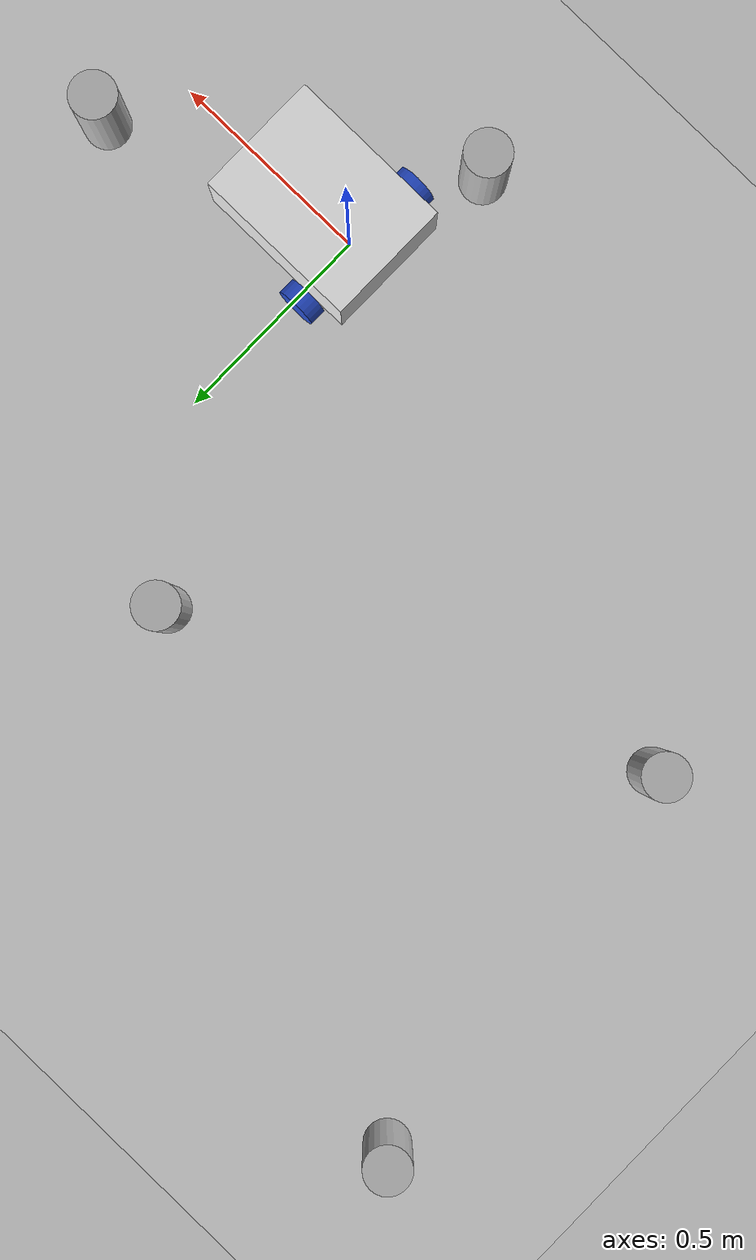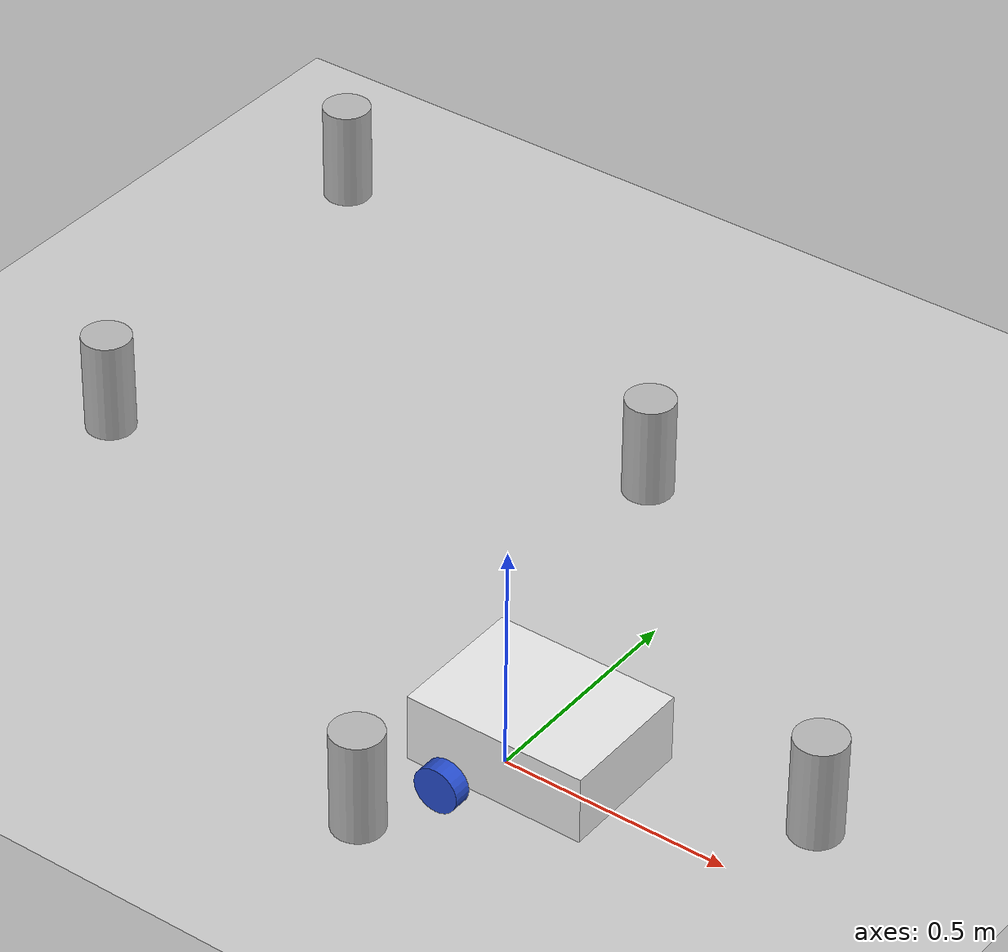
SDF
<sdf version="1.7">
 <world name="default">
  <light name="sun" type="directional">
   <pose>0 0 10 0 -0 0</pose>
   <diffuse>0.8 0.8 0.8 1</diffuse>
   <specular>0.2 0.2 0.2 1</specular>
   <attenuation>
    <range>1000</range>
    <constant>0.9</constant>
    <linear>0.01</linear>
    <quadratic>0.001</quadratic>
   </attenuation>
   <direction>-0.5 0.1 -0.9</direction>
   <spot><inner_angle>0</inner_angle><outer_angle>0</outer_angle><falloff>0</falloff></spot>
  </light>
  <model name="ground_plane">
   <static>1</static>
   <link name="link">
    <collision name="collision">
     <geometry><plane><normal>0 0 1</normal><size>100 100</size></plane></geometry>
     <surface><friction><ode><mu>100</mu><mu2>50</mu2></ode></friction></surface>
    </collision>
    <visual name="visual">
     <cast_shadows>0</cast_shadows>
     <geometry><plane><normal>0 0 1</normal><size>100 100</size></plane></geometry>
     <material>
      <script><uri>file://media/materials/scripts/gazebo.material</uri><name>Gazebo/Grey</name></script>
     </material>
    </visual>
   </link>
  </model>
  <gravity>0 0 -9.8</gravity>
  <magnetic_field>6e-06 2.3e-05 -4.2e-05</magnetic_field>
  <atmosphere type="adiabatic"/>
  <physics type="ode">
   <max_step_size>0.001</max_step_size>
   <real_time_factor>1</real_time_factor>
   <real_time_update_rate>1000</real_time_update_rate>
  </physics>
  <scene><ambient>0.4 0.4 0.4 1</ambient><background>0.7 0.7 0.7 1</background><shadows>1</shadows></scene>
  <audio><device>default</device></audio>
  <spherical_coordinates>
   <surface_model>EARTH_WGS84</surface_model>
   <latitude_deg>0</latitude_deg>
   <longitude_deg>0</longitude_deg>
   <elevation>0</elevation>
   <heading_deg>0</heading_deg>
  </spherical_coordinates>
  <model name="name_bot">
   <link name="base_link">
    <inertial>
     <pose>0.011429 0 0.046429 0 -0 0</pose>
     <mass>0.7</mass>
     <inertia>
      <ixx>0.00616607</ixx>
      <ixy>0</ixy>
      <ixz>0.00457143</ixz>
      <iyy>0.0237113</iyy>
      <iyz>0</iyz>
      <izz>0.0250952</izz>
     </inertia>
    </inertial>
    <collision name="base_link_fixed_joint_lump__caster_wheel_collision">
     <pose>0.24 0 -0.025 0 -0 0</pose>
     <geometry><sphere><radius>0.025</radius></sphere></geometry>
     <surface><friction><ode><mu>0.001</mu><mu2>0.001</mu2></ode></friction></surface>
    </collision>
    <collision name="base_link_fixed_joint_lump__chassis_collision_1">
     <pose>0.1 0 0.075 0 -0 0</pose>
     <geometry><box><size>0.4 0.3 0.15</size></box></geometry>
    </collision>
    <visual name="base_link_fixed_joint_lump__caster_wheel_visual">
     <pose>0.24 0 -0.025 0 -0 0</pose>
     <geometry><sphere><radius>0.025</radius></sphere></geometry>
     <material>
      <script><name>Gazebo/Blue</name><uri>file://media/materials/scripts/gazebo.material</uri></script>
     </material>
    </visual>
    <visual name="base_link_fixed_joint_lump__chassis_visual_1">
     <pose>0.1 0 0.075 0 -0 0</pose>
     <geometry><box><size>0.4 0.3 0.15</size></box></geometry>
     <material>
      <script><name>Gazebo/White</name><uri>file://media/materials/scripts/gazebo.material</uri></script>
     </material>
    </visual>
   </link>
   <joint name="left_wheel_joint" type="revolute">
    <pose relative_to="base_link">0 0.175 0 -1.5708 0 0</pose>
    <parent>base_link</parent>
    <child>left_wheel</child>
    <axis>
     <xyz>0 0 1</xyz>
     <limit><lower>-1e+16</lower><upper>1e+16</upper></limit>
     <dynamics><spring_reference>0</spring_reference><spring_stiffness>0</spring_stiffness></dynamics>
    </axis>
   </joint>
   <link name="left_wheel">
    <pose relative_to="left_wheel_joint">0 0 0 0 -0 0</pose>
    <inertial>
     <mass>0.1</mass>
     <inertia>
      <ixx>3.58333e-05</ixx>
      <ixy>0</ixy>
      <ixz>0</ixz>
      <iyy>3.58333e-05</iyy>
      <iyz>0</iyz>
      <izz>4.5e-05</izz>
     </inertia>
    </inertial>
    <collision name="left_wheel_collision">
     <geometry><cylinder><length>0.04</length><radius>0.05</radius></cylinder></geometry>
    </collision>
    <visual name="left_wheel_visual">
     <geometry><cylinder><length>0.04</length><radius>0.05</radius></cylinder></geometry>
     <material>
      <script><name>Gazebo/Blue</name><uri>file://media/materials/scripts/gazebo.material</uri></script>
     </material>
    </visual>
   </link>
   <joint name="right_wheel_joint" type="revolute">
    <pose relative_to="base_link">0 -0.175 0 1.5708 -0 0</pose>
    <parent>base_link</parent>
    <child>right_wheel</child>
    <axis>
     <xyz>0 0 -1</xyz>
     <limit><lower>-1e+16</lower><upper>1e+16</upper></limit>
     <dynamics><spring_reference>0</spring_reference><spring_stiffness>0</spring_stiffness></dynamics>
    </axis>
   </joint>
   <link name="right_wheel">
    <pose relative_to="right_wheel_joint">0 0 0 0 -0 0</pose>
    <inertial>
     <mass>0.1</mass>
     <inertia>
      <ixx>3.58333e-05</ixx>
      <ixy>0</ixy>
      <ixz>0</ixz>
      <iyy>3.58333e-05</iyy>
      <iyz>0</iyz>
      <izz>4.5e-05</izz>
     </inertia>
    </inertial>
    <collision name="right_wheel_collision">
     <geometry><cylinder><length>0.04</length><radius>0.05</radius></cylinder></geometry>
    </collision>
    <visual name="right_wheel_visual">
     <geometry><cylinder><length>0.04</length><radius>0.05</radius></cylinder></geometry>
     <material>
      <script><name>Gazebo/Blue</name><uri>file://media/materials/scripts/gazebo.material</uri></script>
     </material>
    </visual>
   </link>
   <static>0</static>
   <plugin name="diff_drive" filename="libgazebo_ros_diff_drive.so">
    <left_joint>left_wheel_joint</left_joint>
    <right_joint>right_wheel_joint</right_joint>
    <wheel_separation>0.35</wheel_separation>
    <wheel_diameter>0.1</wheel_diameter>
    <max_wheel_torque>200</max_wheel_torque>
    <max_wheel_acceleration>10.0</max_wheel_acceleration>
    <commandTopic>cmd_vel</commandTopic>
    <odometryTopic>odom</odometryTopic>
    <odometrySource>world</odometrySource>
    <publish_odom>1</publish_odom>
    <publish_odom_tf>1</publish_odom_tf>
    <publish_wheel_tf>1</publish_wheel_tf>
   </plugin>
   <pose>-0.021066 -0.000991 0.050001 1e-06 2e-06 -0.002358</pose>
  </model>
  <model name="beer">
   <link name="link">
    <pose>0 0 0.115 0 -0 0</pose>
    <inertial>
     <mass>0.39</mass>
     <inertia><ixx>0.00058</ixx><ixy>0</ixy><ixz>0</ixz><iyy>0.00058</iyy><iyz>0</iyz><izz>0.00019</izz></inertia>
    </inertial>
    <collision name="collision">
     <geometry><cylinder><radius>0.055</radius><length>0.23</length></cylinder></geometry>
    </collision>
    <visual name="visual">
     <geometry><cylinder><radius>0.055</radius><length>0.23</length></cylinder></geometry>
     <material>
      <script>
       <uri>model://beer/materials/scripts</uri>
       <uri>model://beer/materials/textures</uri>
       <name>Beer/Diffuse</name>
      </script>
     </material>
    </visual>
   </link>
   <pose>-1.31023 0.382865 -2e-06 0 -0 -5e-06</pose>
  </model>
  <model name="beer_0">
   <link name="link">
    <pose>0 0 0.115 0 -0 0</pose>
    <inertial>
     <mass>0.39</mass>
     <inertia><ixx>0.00058</ixx><ixy>0</ixy><ixz>0</ixz><iyy>0.00058</iyy><iyz>0</iyz><izz>0.00019</izz></inertia>
    </inertial>
    <collision name="collision">
     <geometry><cylinder><radius>0.055</radius><length>0.23</length></cylinder></geometry>
    </collision>
    <visual name="visual">
     <geometry><cylinder><radius>0.055</radius><length>0.23</length></cylinder></geometry>
     <material>
      <script>
       <uri>model://beer/materials/scripts</uri>
       <uri>model://beer/materials/textures</uri>
       <name>Beer/Diffuse</name>
      </script>
     </material>
    </visual>
   </link>
   <pose>-1.46073 1.38762 -7e-06 -0 -0 -4e-06</pose>
  </model>
  <model name="beer_1">
   <link name="link">
    <pose>0 0 0.115 0 -0 0</pose>
    <inertial>
     <mass>0.39</mass>
     <inertia><ixx>0.00058</ixx><ixy>0</ixy><ixz>0</ixz><iyy>0.00058</iyy><iyz>0</iyz><izz>0.00019</izz></inertia>
    </inertial>
    <collision name="collision">
     <geometry><cylinder><radius>0.055</radius><length>0.23</length></cylinder></geometry>
    </collision>
    <visual name="visual">
     <geometry><cylinder><radius>0.055</radius><length>0.23</length></cylinder></geometry>
     <material>
      <script>
       <uri>model://beer/materials/scripts</uri>
       <uri>model://beer/materials/textures</uri>
       <name>Beer/Diffuse</name>
      </script>
     </material>
    </visual>
   </link>
   <pose>-0.279079 0.875034 -2e-06 1e-06 -0 -3e-06</pose>
  </model>
  <model name="beer_2">
   <link name="link">
    <pose>0 0 0.115 0 -0 0</pose>
    <inertial>
     <mass>0.39</mass>
     <inertia><ixx>0.00058</ixx><ixy>0</ixy><ixz>0</ixz><iyy>0.00058</iyy><iyz>0</iyz><izz>0.00019</izz></inertia>
    </inertial>
    <collision name="collision">
     <geometry><cylinder><radius>0.055</radius><length>0.23</length></cylinder></geometry>
    </collision>
    <visual name="visual">
     <geometry><cylinder><radius>0.055</radius><length>0.23</length></cylinder></geometry>
     <material>
      <script>
       <uri>model://beer/materials/scripts</uri>
       <uri>model://beer/materials/textures</uri>
       <name>Beer/Diffuse</name>
      </script>
     </material>
    </visual>
   </link>
   <pose>-0.113758 -0.312945 -7e-06 -1e-06 -0 -2e-06</pose>
  </model>
  <model name="beer_3">
   <link name="link">
    <pose>0 0 0.115 0 -0 0</pose>
    <inertial>
     <mass>0.39</mass>
     <inertia><ixx>0.00058</ixx><ixy>0</ixy><ixz>0</ixz><iyy>0.00058</iyy><iyz>0</iyz><izz>0.00019</izz></inertia>
    </inertial>
    <collision name="collision">
     <geometry><cylinder><radius>0.055</radius><length>0.23</length></cylinder></geometry>
    </collision>
    <visual name="visual">
     <geometry><cylinder><radius>0.055</radius><length>0.23</length></cylinder></geometry>
     <material>
      <script>
       <uri>model://beer/materials/scripts</uri>
       <uri>model://beer/materials/textures</uri>
       <name>Beer/Diffuse</name>
      </script>
     </material>
    </visual>
   </link>
   <pose>0.581329 0.185915 -2e-06 1e-06 -0 -1e-06</pose>
  </model>
 </world>
</sdf>
